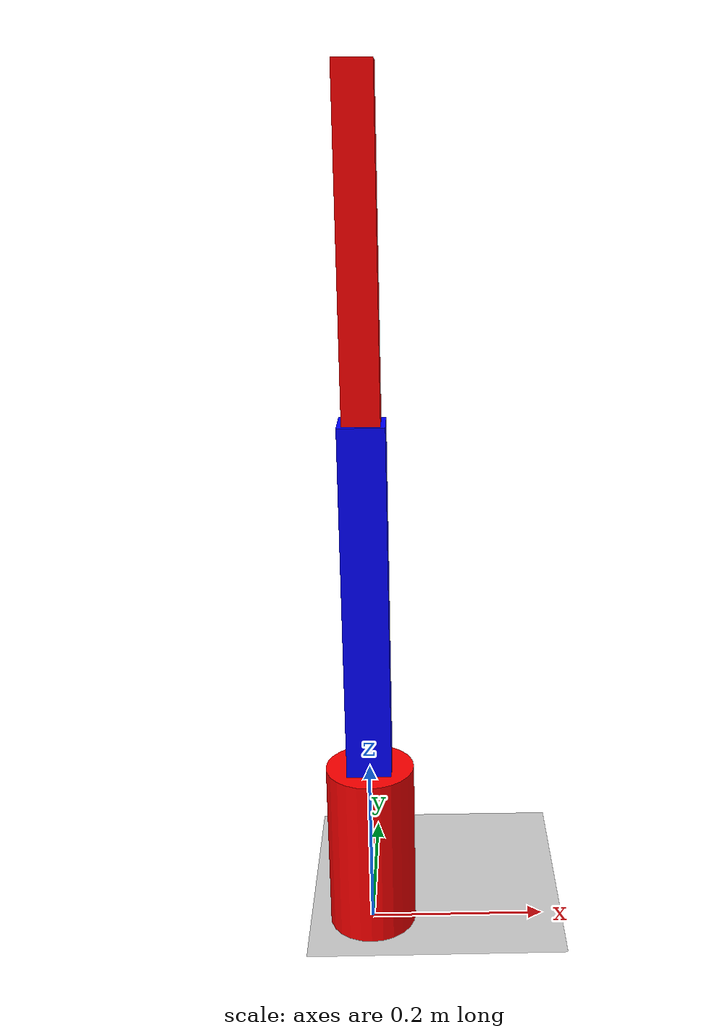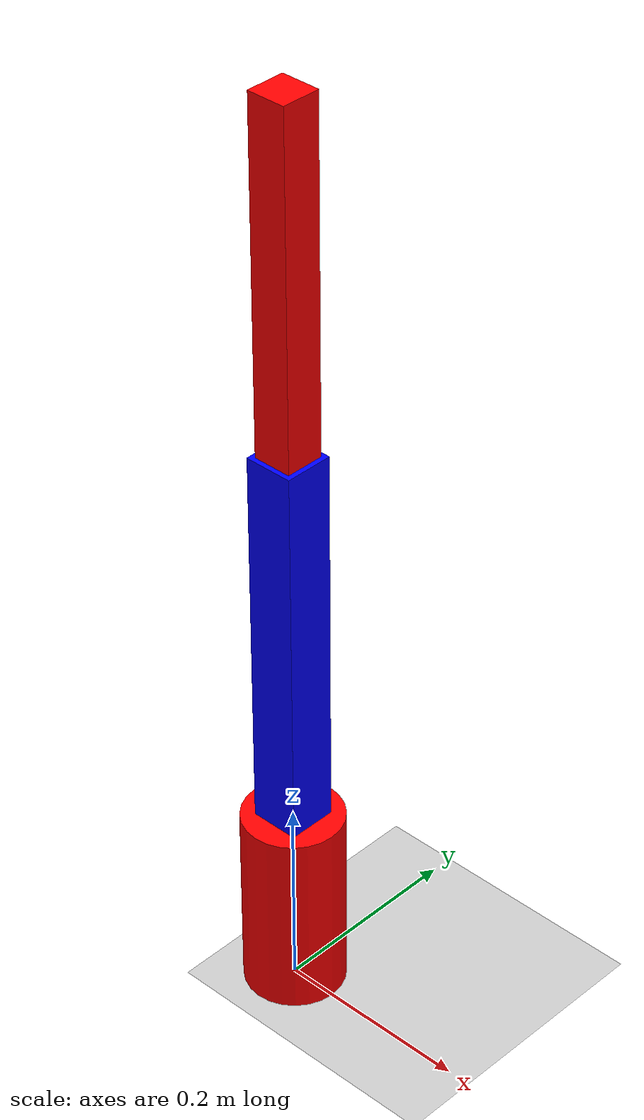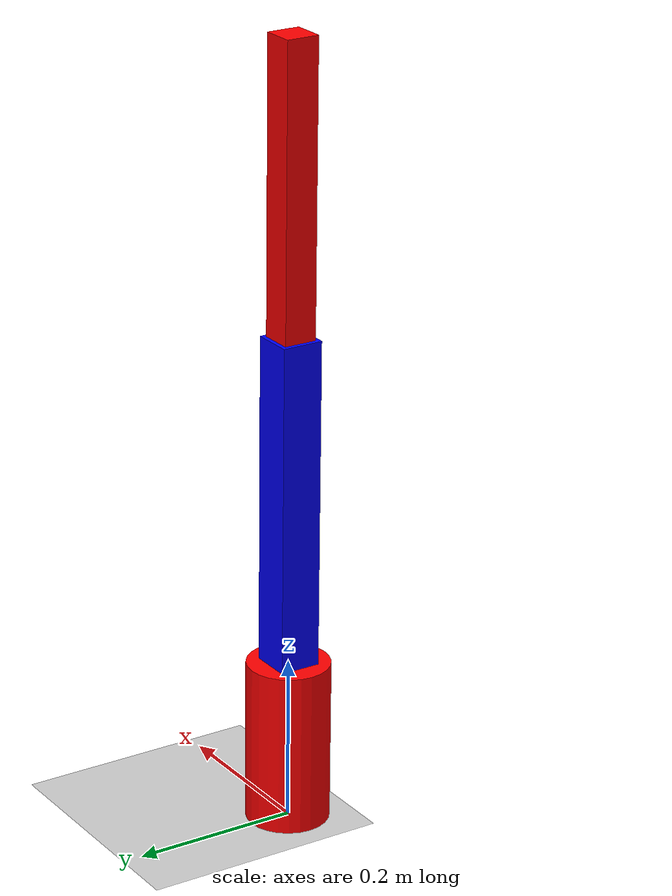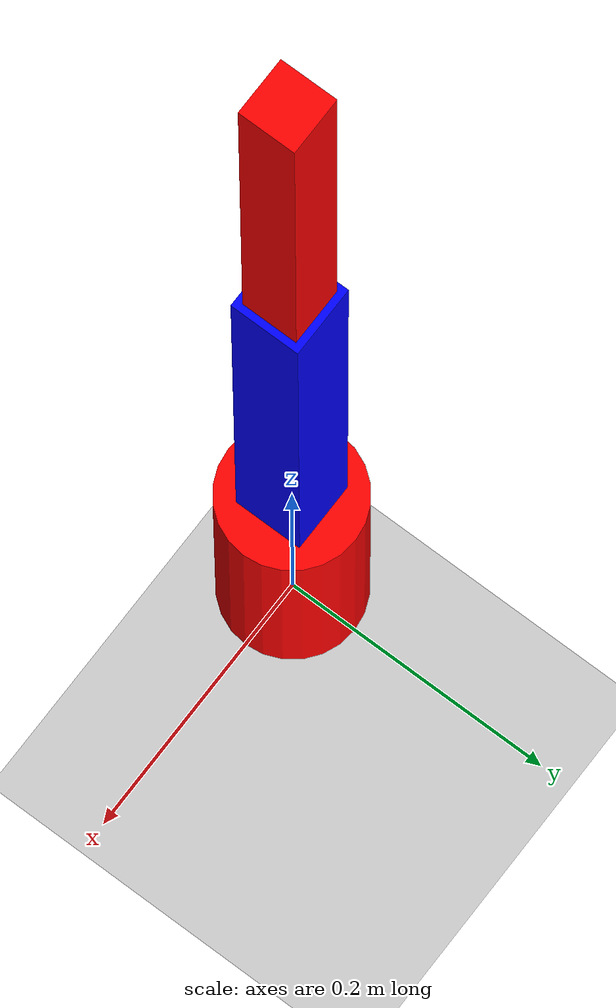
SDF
<?xml version="1.0" ?>
<sdf version="1.8">
  <world name="two_joint_arm_world">

    <!-- ENVIRONMENT-->

    <physics name="1ms" type="ignored">
        <max_step_size>0.001</max_step_size>
        <real_time_factor>1.0</real_time_factor>
    </physics>
    <plugin
        filename="gz-sim-physics-system"
        name="gz::sim::systems::Physics">
    </plugin>

    <environment>
      <shadows>1</shadows>
    </environment>

    <light type="directional" name="sun">
        <cast_shadows>true</cast_shadows>
        <pose>0 0 10 0 0 0</pose>
        <diffuse>0.8 0.8 0.8 1</diffuse>
        <specular>0.2 0.2 0.2 1</specular>
        <attenuation>
            <range>1000</range>
            <constant>0.9</constant>
            <linear>0.01</linear>
            <quadratic>0.001</quadratic>
        </attenuation>
        <direction>-0.5 0.1 -0.9</direction>
    </light>

    <!-- Ground Plane -->
    <model name="ground_plane">
      <static>true</static>
      <link name="link">
        <collision name="collision">
          <geometry>
            <plane>
              <normal>0 0 1</normal>
              <size>10 10</size>
            </plane>
          </geometry>
        </collision>
        <visual name="visual">
          <geometry>
            <plane>
              <normal>0 0 1</normal>
              <size>10 10</size>
            </plane>
          </geometry>

          <!-- COLOR!-->
          <material>
            <ambient>0.8 0.8 0.8 1</ambient>
            <diffuse>0.8 0.8 0.8 1</diffuse>
            <specular>0.5 0.5 0.5 1</specular>
          </material>
        </visual>
      </link>
    </model>

    <!-- Robotic Arm Model -->
    <model name="two_joint_arm">

      <plugin
        filename="libignition-gazebo-joint-state-publisher-system.so"
        name="ignition::gazebo::systems::JointStatePublisher">
      </plugin>

      <!-- Base Link -->
      <link name="base_link">

        <pose>0 0 0.1 0 0 0</pose>

        <collision name="base_collision">
          <geometry>
            <cylinder>
              <radius>0.05</radius>
              <length>0.2</length>
            </cylinder>
          </geometry>
        </collision>

        <visual name="base_visual">
          <geometry>
            <cylinder>
              <radius>0.05</radius>
              <length>0.2</length>
            </cylinder>
          </geometry>

          <!-- COLOR!-->
          <material>
            <ambient>1.0 0.0 0.0 1</ambient>
            <diffuse>1.0 0.0 0.0 1</diffuse>
            <specular>1.0 0.0 0.0 1</specular>
          </material>
        </visual>

        <inertial>
          <mass>100</mass>
          <inertia>
            <ixx>833.3333</ixx>
            <ixy>0</ixy>
            <ixz>0</ixz>
            <iyy>833.3333</iyy>
            <iyz>0</iyz>
            <izz>416.6667</izz>
          </inertia>
        </inertial>
      </link>

      <!-- First Link (attached to base) -->
      <link name="link1">
        <pose>0 0 0.35 0 0 0</pose>
        <collision name="link1_collision">
          <geometry>
            <box>
              <size>0.05 0.05 0.5</size>
            </box>
          </geometry>
        </collision>
        <visual name="link1_visual">
          <geometry>
            <box>
              <size>0.05 0.05 0.5</size>
            </box>
          </geometry>

          <!-- COLOR!!-->
          <material>
            <ambient>0.0 0.0 1.0 1</ambient>
            <diffuse>0.0 0.0 1.0 1</diffuse>
            <specular>0.0 0.0 1.0 1</specular>
          </material>
        </visual>
      </link>

      <!-- Second Link -->
      <link name="link2">
        <pose>0 0 0.75 0 0 0</pose>
        <collision name="link2_collision">
          <geometry>
            <box>
              <size>0.04 0.04 0.4</size>
            </box>
          </geometry>
        </collision>
        <visual name="link2_visual">
          <geometry>
            <box>
              <size>0.04 0.04 0.4</size>
            </box>
          </geometry>

          <!-- COLOR !!-->
          <material>
            <ambient>1.0 0.0 0.0 1</ambient>
            <diffuse>1.0 0.0 0.0 1</diffuse>
            <specular>1.0 0.0 0.0 1</specular>
          </material>
        </visual>
      </link>

      <!-- Joints -->
      <joint name="base_to_link1" type="revolute">
        <parent>base_link</parent>
        <child>link1</child>
        <axis>
          <xyz>0 1 0</xyz>
          <limit>
            <lower>-1.57</lower>
            <upper>1.57</upper>
          </limit>
        </axis>
        <pose>0 0 0.3 0 0 0</pose>
      </joint>

      <joint name="link1_to_link2" type="revolute">
        <parent>link1</parent>
        <child>link2</child>
        <axis>
          <xyz>0 1 0</xyz>
          <limit>
            <lower>-1.57</lower>
            <upper>1.57</upper>
          </limit>
        </axis>
        <pose>0 0 0.3 0 0 0</pose>
      </joint>
    </model>

  </world>
</sdf>
